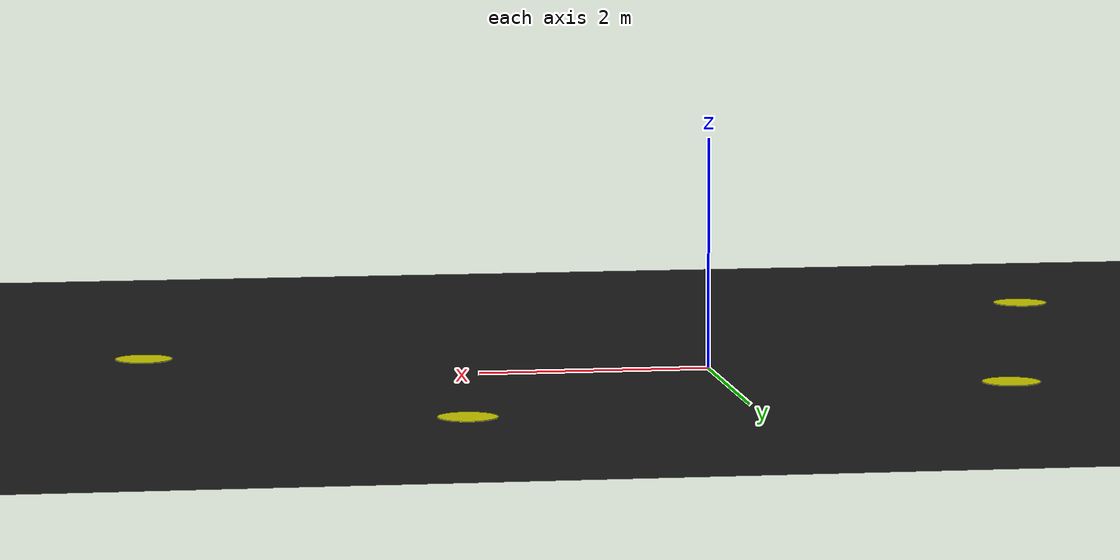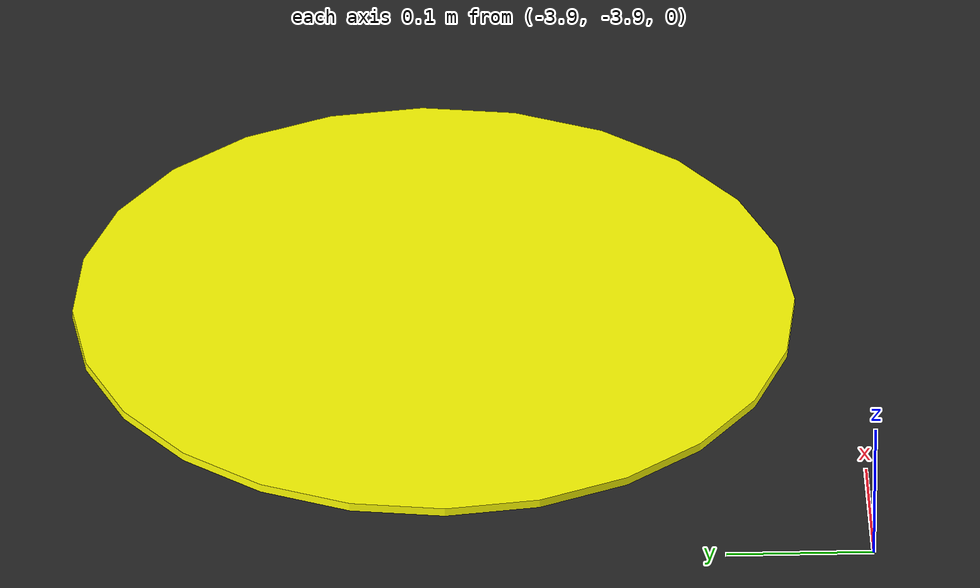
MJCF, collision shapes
<mujoco model="khojo_arena_scan">

  <option gravity="0 0 -9.81" timestep="0.005" integrator="RK4"/>

  <visual>
    <!-- Headlight follows the active camera — at z=20 pointing down it acts as overhead sun -->
    <headlight ambient="0.7 0.7 0.7" diffuse="0.9 0.9 0.9" specular="0.1 0.1 0.1"/>
    <rgba haze="0.0 0.0 0.0 1"/>
    <global azimuth="120" elevation="-20" offwidth="1920" offheight="1920"/>

    <quality offsamples="0" shadowsize="0" numslices="14" numstacks="8" numquads="2"/>
  </visual>

  <asset>
    <!-- ── Skybox / floor ── -->
    <texture type="skybox" builtin="gradient" rgb1="0.4 0.6 0.8" rgb2="0 0 0"
             width="512" height="512"/>
    <material name="floor_mat" rgba="0.15 0.15 0.15 1" reflectance="0.0"/>

    <texture name="arena_tex" type="2d" file="meshes/textures/Khojo_Arena.png"/>
    <material name="arena_mat" texture="arena_tex" texuniform="true" texrepeat="0.11547 0.11547"
              rgba="1 1 1 1  " reflectance="0.0"/>

    <!-- Flat equilateral-triangle floor marker, side 1m. MuJoCo has no
         triangular-prism primitive, so this is a thin (0.01m) hand-built
         mesh instead (see meshes/triangle_marker.obj). -->
    <mesh name="triangle_marker" file="meshes/triangle_marker.obj"/>
  </asset>

  <worldbody>
    <light pos="0 0 10" dir="0 0 -1" directional="true" castshadow="false"
           diffuse="0.9 0.9 0.9" specular="0.1 0.1 0.1"/>
    <light pos="0 0 20" dir="0 0 -1" directional="true" diffuse="0.8 0.8 0.8" specular="0.0 0.0 0.0" castshadow="false"/>
    <geom name="floor" type="plane" size="20 20 0.1" material="floor_mat" contype="1" conaffinity="1"/>
    <geom name="arena_floor" type="plane" size="8.6603 8.6603 0.01" pos="0 0 0.001"
          material="arena_mat" contype="0" conaffinity="0"/>

    <!-- Composite markers (red triangle + yellow circle) at: C9,D5,H4,J7 . No obstacles in this scene. -->
    <geom name="target_C9_tri" type="mesh" mesh="triangle_marker" pos="-3.6102 -3.6102 0.005" rgba="1 0 0 1" contype="0" conaffinity="0"/>
    <geom name="target_C9_circle" type="cylinder" size="0.25 0.003" pos="-3.6102 -3.6102 0.012" rgba="1 1 0 1" contype="0" conaffinity="0"/>
    <geom name="target_D5_tri" type="mesh" mesh="triangle_marker" pos="-2.4068 1.2034 0.005" rgba="1 0 0 1" contype="0" conaffinity="0"/>
    <geom name="target_D5_circle" type="cylinder" size="0.25 0.003" pos="-2.4068 1.2034 0.012" rgba="1 1 0 1" contype="0" conaffinity="0"/>
    <geom name="target_H4_tri" type="mesh" mesh="triangle_marker" pos="2.4068 2.4068 0.005" rgba="1 0 0 1" contype="0" conaffinity="0"/>
    <geom name="target_H4_circle" type="cylinder" size="0.25 0.003" pos="2.4068 2.4068 0.012" rgba="1 1 0 1" contype="0" conaffinity="0"/>
    <geom name="target_J7_tri" type="mesh" mesh="triangle_marker" pos="4.8137 -1.2034 0.005" rgba="1 0 0 1" contype="0" conaffinity="0"/>
    <geom name="target_J7_circle" type="cylinder" size="0.25 0.003" pos="4.8137 -1.2034 0.012" rgba="1 1 0 1" contype="0" conaffinity="0"/>

    <camera name="top_cam" pos="0 0 15" xyaxes="1 0 0 0 1 0" fovy="60"/>
  </worldbody>
</mujoco>
